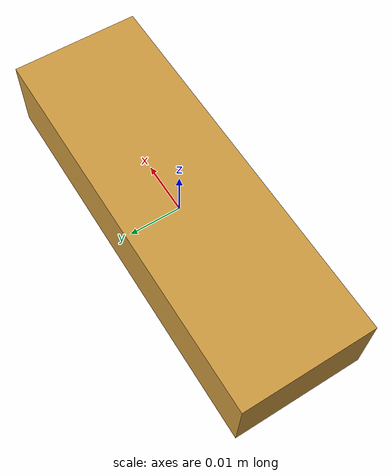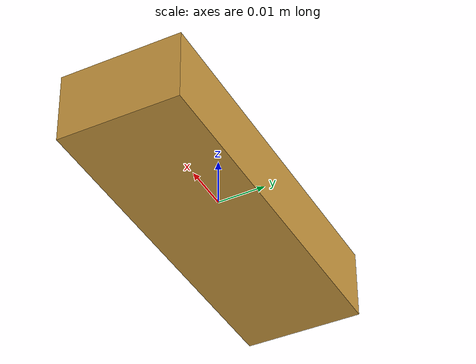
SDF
<?xml version="1.0" ?>
<sdf version="1.6">
  <model name="jenga_block">
    <static>false</static>
    <link name="link">
      <inertial>
        <mass>0.007</mass>
        <inertia>
          <ixx>4.9583e-7</ixx><iyy>3.4125e-6</iyy><izz>3.6458e-6</izz>
          <ixy>0</ixy><ixz>0</ixz><iyz>0</iyz>
        </inertia>
      </inertial>
      <collision name="c">
        <geometry><box><size>0.075 0.025 0.015</size></box></geometry>
        <surface>
          <friction><ode><mu>0.8</mu><mu2>0.8</mu2></ode></friction>
          <contact><ode><min_depth>0.002</min_depth><max_vel>0.01</max_vel></ode></contact>
        </surface>
      </collision>
      <visual name="v">
        <geometry><box><size>0.075 0.025 0.015</size></box></geometry>
        <material>
          <ambient>0.45 0.30 0.10 1</ambient>
          <diffuse>0.80 0.60 0.25 1</diffuse>
        </material>
      </visual>
    </link>
  </model>
</sdf>
